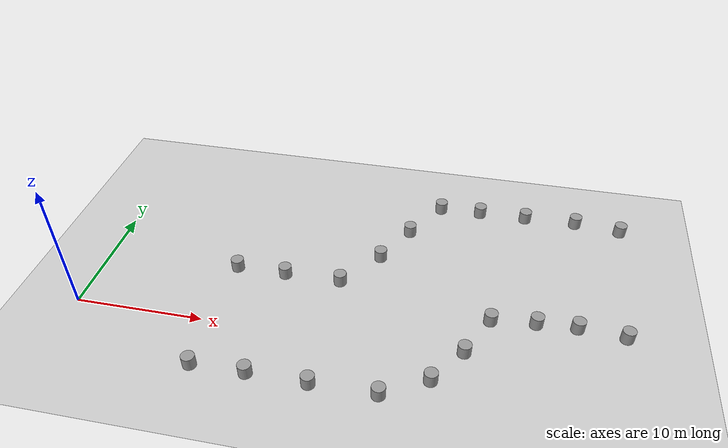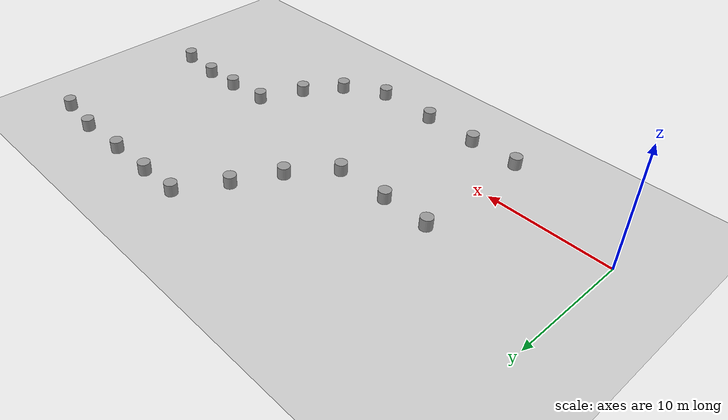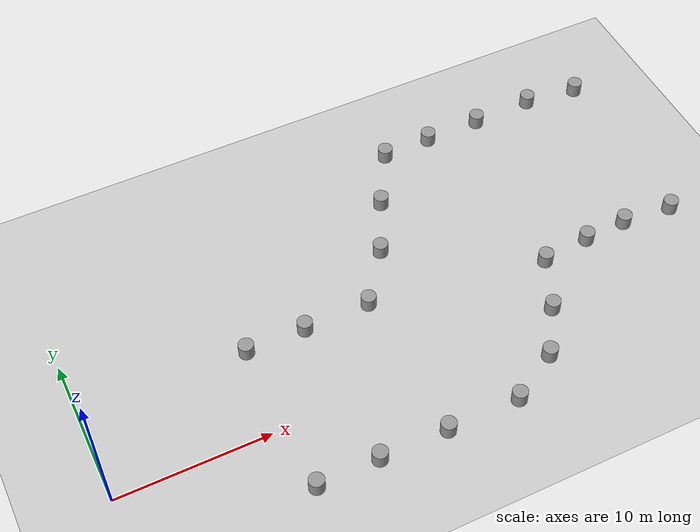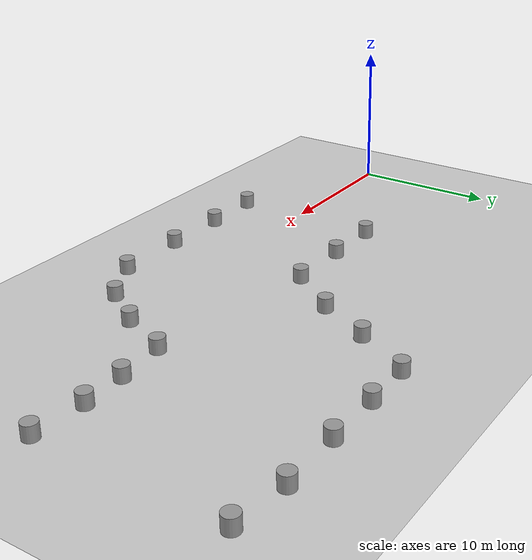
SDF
<sdf version="1.4">
 <world name="default">
  <light name="sun" type="directional">
   <pose>0 0 10 0 -0 0</pose>
   <diffuse>0.8 0.8 0.8 1</diffuse>
   <specular>0.2 0.2 0.2 1</specular>
   <attenuation>
    <range>1000</range>
    <constant>0.9</constant>
    <linear>0.01</linear>
    <quadratic>0.001</quadratic>
   </attenuation>
   <direction>-0.5 0.1 -0.9</direction>
  </light>
  <scene>
   <sky><time>10</time><clouds><speed>5</speed><direction>1.14</direction><humidity>0.3</humidity></clouds></sky>
   <ambient>0.4 0.4 0.4 1</ambient>
   <background>0.7 0.7 0.7 1</background>
   <shadows>1</shadows>
  </scene>
  <model name="ground_plane">
   <static>1</static>
   <link name="link">
    <collision name="collision">
     <geometry><plane><normal>0 0 1</normal><size>500 500</size></plane></geometry>
     <surface><friction><ode><mu>100</mu><mu2>100</mu2></ode></friction></surface>
    </collision>
    <visual name="visual">
     <cast_shadows>0</cast_shadows>
     <geometry><plane><normal>0 0 1</normal><size>500 500</size></plane></geometry>
     <material>
      <script><uri>file://media/materials/scripts/gazebo.material</uri><name>Gazebo/Grey</name></script>
     </material>
    </visual>
    <velocity_decay><linear>0</linear><angular>0</angular></velocity_decay>
   </link>
  </model>
  <physics type="ode">
   <max_step_size>0.001</max_step_size>
   <real_time_factor>1</real_time_factor>
   <real_time_update_rate>1000</real_time_update_rate>
   <gravity>0 0 -9.8</gravity>
  </physics>
  <spherical_coordinates>
   <surface_model>EARTH_WGS84</surface_model>
   <latitude_deg>0</latitude_deg>
   <longitude_deg>0</longitude_deg>
   <elevation>0</elevation>
   <heading_deg>0</heading_deg>
  </spherical_coordinates>
  <model name="unit_cylinder_1">
   <pose>10.8493 -4.37598 0.499992 -1e-06 1e-06 0</pose>
   <link name="link">
    <inertial>
     <mass>1</mass>
     <inertia><ixx>1</ixx><ixy>0</ixy><ixz>0</ixz><iyy>1</iyy><iyz>0</iyz><izz>1</izz></inertia>
    </inertial>
    <collision name="collision">
     <geometry><cylinder><radius>0.5</radius><length>1</length></cylinder></geometry>
    </collision>
    <visual name="visual">
     <geometry><cylinder><radius>0.5</radius><length>1</length></cylinder></geometry>
     <material>
      <script><uri>file://media/materials/scripts/gazebo.material</uri><name>Gazebo/Grey</name></script>
     </material>
    </visual>
    <velocity_decay><linear>0</linear><angular>0</angular></velocity_decay>
   </link>
   <static>0</static>
  </model>
  <model name="unit_cylinder_2">
   <pose>14.9034 -4.33385 0.499999 0 -0 0</pose>
   <link name="link">
    <inertial>
     <mass>1</mass>
     <inertia><ixx>1</ixx><ixy>0</ixy><ixz>0</ixz><iyy>1</iyy><iyz>0</iyz><izz>1</izz></inertia>
    </inertial>
    <collision name="collision">
     <geometry><cylinder><radius>0.5</radius><length>1</length></cylinder></geometry>
    </collision>
    <visual name="visual">
     <geometry><cylinder><radius>0.5</radius><length>1</length></cylinder></geometry>
     <material>
      <script><uri>file://media/materials/scripts/gazebo.material</uri><name>Gazebo/Grey</name></script>
     </material>
    </visual>
    <velocity_decay><linear>0</linear><angular>0</angular></velocity_decay>
   </link>
   <static>0</static>
  </model>
  <model name="unit_cylinder_3">
   <pose>19.3727 -4.37239 0.499991 0 -0 0</pose>
   <link name="link">
    <inertial>
     <mass>1</mass>
     <inertia><ixx>1</ixx><ixy>0</ixy><ixz>0</ixz><iyy>1</iyy><iyz>0</iyz><izz>1</izz></inertia>
    </inertial>
    <collision name="collision">
     <geometry><cylinder><radius>0.5</radius><length>1</length></cylinder></geometry>
    </collision>
    <visual name="visual">
     <geometry><cylinder><radius>0.5</radius><length>1</length></cylinder></geometry>
     <material>
      <script><uri>file://media/materials/scripts/gazebo.material</uri><name>Gazebo/Grey</name></script>
     </material>
    </visual>
    <velocity_decay><linear>0</linear><angular>0</angular></velocity_decay>
   </link>
   <static>0</static>
  </model>
  <model name="unit_cylinder_4">
   <pose>24.2225 -4.33482 0.499998 1e-06 -1e-06 0</pose>
   <link name="link">
    <inertial>
     <mass>1</mass>
     <inertia><ixx>1</ixx><ixy>0</ixy><ixz>0</ixz><iyy>1</iyy><iyz>0</iyz><izz>1</izz></inertia>
    </inertial>
    <collision name="collision">
     <geometry><cylinder><radius>0.5</radius><length>1</length></cylinder></geometry>
    </collision>
    <visual name="visual">
     <geometry><cylinder><radius>0.5</radius><length>1</length></cylinder></geometry>
     <material>
      <script><uri>file://media/materials/scripts/gazebo.material</uri><name>Gazebo/Grey</name></script>
     </material>
    </visual>
    <velocity_decay><linear>0</linear><angular>0</angular></velocity_decay>
   </link>
   <static>0</static>
  </model>
  <model name="unit_cylinder_5">
   <pose>30.99 4.06806 0.499992 -1e-06 1e-06 0</pose>
   <link name="link">
    <inertial>
     <mass>1</mass>
     <inertia><ixx>1</ixx><ixy>0</ixy><ixz>0</ixz><iyy>1</iyy><iyz>0</iyz><izz>1</izz></inertia>
    </inertial>
    <collision name="collision">
     <geometry><cylinder><radius>0.5</radius><length>1</length></cylinder></geometry>
    </collision>
    <visual name="visual">
     <geometry><cylinder><radius>0.5</radius><length>1</length></cylinder></geometry>
     <material>
      <script><uri>file://media/materials/scripts/gazebo.material</uri><name>Gazebo/Grey</name></script>
     </material>
    </visual>
    <velocity_decay><linear>0</linear><angular>0</angular></velocity_decay>
   </link>
   <static>0</static>
  </model>
  <model name="unit_cylinder_6">
   <pose>27.461 -2.4138 0.499992 -1e-06 1e-06 0</pose>
   <link name="link">
    <inertial>
     <mass>1</mass>
     <inertia><ixx>1</ixx><ixy>0</ixy><ixz>0</ixz><iyy>1</iyy><iyz>0</iyz><izz>1</izz></inertia>
    </inertial>
    <collision name="collision">
     <geometry><cylinder><radius>0.5</radius><length>1</length></cylinder></geometry>
    </collision>
    <visual name="visual">
     <geometry><cylinder><radius>0.5</radius><length>1</length></cylinder></geometry>
     <material>
      <script><uri>file://media/materials/scripts/gazebo.material</uri><name>Gazebo/Grey</name></script>
     </material>
    </visual>
    <velocity_decay><linear>0</linear><angular>0</angular></velocity_decay>
   </link>
   <static>0</static>
  </model>
  <model name="unit_cylinder_7">
   <pose>29.4275 0.569501 0.499998 0 -0 0</pose>
   <link name="link">
    <inertial>
     <mass>1</mass>
     <inertia><ixx>1</ixx><ixy>0</ixy><ixz>0</ixz><iyy>1</iyy><iyz>0</iyz><izz>1</izz></inertia>
    </inertial>
    <collision name="collision">
     <geometry><cylinder><radius>0.5</radius><length>1</length></cylinder></geometry>
    </collision>
    <visual name="visual">
     <geometry><cylinder><radius>0.5</radius><length>1</length></cylinder></geometry>
     <material>
      <script><uri>file://media/materials/scripts/gazebo.material</uri><name>Gazebo/Grey</name></script>
     </material>
    </visual>
    <velocity_decay><linear>0</linear><angular>0</angular></velocity_decay>
   </link>
   <static>0</static>
  </model>
  <model name="unit_cylinder_8">
   <pose>34.3193 4.41913 0.499996 -1e-06 1e-06 0</pose>
   <link name="link">
    <inertial>
     <mass>1</mass>
     <inertia><ixx>1</ixx><ixy>0</ixy><ixz>0</ixz><iyy>1</iyy><iyz>0</iyz><izz>1</izz></inertia>
    </inertial>
    <collision name="collision">
     <geometry><cylinder><radius>0.5</radius><length>1</length></cylinder></geometry>
    </collision>
    <visual name="visual">
     <geometry><cylinder><radius>0.5</radius><length>1</length></cylinder></geometry>
     <material>
      <script><uri>file://media/materials/scripts/gazebo.material</uri><name>Gazebo/Grey</name></script>
     </material>
    </visual>
    <velocity_decay><linear>0</linear><angular>0</angular></velocity_decay>
   </link>
   <static>0</static>
  </model>
  <model name="unit_cylinder_9">
   <pose>37.2907 4.56422 0.499994 1e-06 1e-06 0</pose>
   <link name="link">
    <inertial>
     <mass>1</mass>
     <inertia><ixx>1</ixx><ixy>0</ixy><ixz>0</ixz><iyy>1</iyy><iyz>0</iyz><izz>1</izz></inertia>
    </inertial>
    <collision name="collision">
     <geometry><cylinder><radius>0.5</radius><length>1</length></cylinder></geometry>
    </collision>
    <visual name="visual">
     <geometry><cylinder><radius>0.5</radius><length>1</length></cylinder></geometry>
     <material>
      <script><uri>file://media/materials/scripts/gazebo.material</uri><name>Gazebo/Grey</name></script>
     </material>
    </visual>
    <velocity_decay><linear>0</linear><angular>0</angular></velocity_decay>
   </link>
   <static>0</static>
  </model>
  <model name="unit_cylinder_10">
   <pose>40.7675 4.28969 0.499998 1e-06 -1e-06 0</pose>
   <link name="link">
    <inertial>
     <mass>1</mass>
     <inertia><ixx>1</ixx><ixy>0</ixy><ixz>0</ixz><iyy>1</iyy><iyz>0</iyz><izz>1</izz></inertia>
    </inertial>
    <collision name="collision">
     <geometry><cylinder><radius>0.5</radius><length>1</length></cylinder></geometry>
    </collision>
    <visual name="visual">
     <geometry><cylinder><radius>0.5</radius><length>1</length></cylinder></geometry>
     <material>
      <script><uri>file://media/materials/scripts/gazebo.material</uri><name>Gazebo/Grey</name></script>
     </material>
    </visual>
    <velocity_decay><linear>0</linear><angular>0</angular></velocity_decay>
   </link>
   <static>0</static>
  </model>
  <model name="unit_cylinder_11">
   <pose>10.7946 5.96568 0.504953 0.007788 -0.006204 1.0658</pose>
   <link name="link">
    <inertial>
     <mass>1</mass>
     <inertia><ixx>1</ixx><ixy>0</ixy><ixz>0</ixz><iyy>1</iyy><iyz>0</iyz><izz>1</izz></inertia>
    </inertial>
    <collision name="collision">
     <geometry><cylinder><radius>0.5</radius><length>1</length></cylinder></geometry>
    </collision>
    <visual name="visual">
     <geometry><cylinder><radius>0.5</radius><length>1</length></cylinder></geometry>
     <material>
      <script><uri>file://media/materials/scripts/gazebo.material</uri><name>Gazebo/Grey</name></script>
     </material>
    </visual>
    <velocity_decay><linear>0</linear><angular>0</angular></velocity_decay>
   </link>
   <static>0</static>
  </model>
  <model name="unit_cylinder_12">
   <pose>14.7322 5.94552 0.499992 0 -0 0</pose>
   <link name="link">
    <inertial>
     <mass>1</mass>
     <inertia><ixx>1</ixx><ixy>0</ixy><ixz>0</ixz><iyy>1</iyy><iyz>0</iyz><izz>1</izz></inertia>
    </inertial>
    <collision name="collision">
     <geometry><cylinder><radius>0.5</radius><length>1</length></cylinder></geometry>
    </collision>
    <visual name="visual">
     <geometry><cylinder><radius>0.5</radius><length>1</length></cylinder></geometry>
     <material>
      <script><uri>file://media/materials/scripts/gazebo.material</uri><name>Gazebo/Grey</name></script>
     </material>
    </visual>
    <velocity_decay><linear>0</linear><angular>0</angular></velocity_decay>
   </link>
   <static>0</static>
  </model>
  <model name="unit_cylinder_13">
   <pose>19.1583 5.99531 0.499998 0 -1e-06 0</pose>
   <link name="link">
    <inertial>
     <mass>1</mass>
     <inertia><ixx>1</ixx><ixy>0</ixy><ixz>0</ixz><iyy>1</iyy><iyz>0</iyz><izz>1</izz></inertia>
    </inertial>
    <collision name="collision">
     <geometry><cylinder><radius>0.5</radius><length>1</length></cylinder></geometry>
    </collision>
    <visual name="visual">
     <geometry><cylinder><radius>0.5</radius><length>1</length></cylinder></geometry>
     <material>
      <script><uri>file://media/materials/scripts/gazebo.material</uri><name>Gazebo/Grey</name></script>
     </material>
    </visual>
    <velocity_decay><linear>0</linear><angular>0</angular></velocity_decay>
   </link>
   <static>0</static>
  </model>
  <model name="unit_cylinder_14">
   <pose>21.7031 9.46693 0.499992 0 -0 0</pose>
   <link name="link">
    <inertial>
     <mass>1</mass>
     <inertia><ixx>1</ixx><ixy>0</ixy><ixz>0</ixz><iyy>1</iyy><iyz>0</iyz><izz>1</izz></inertia>
    </inertial>
    <collision name="collision">
     <geometry><cylinder><radius>0.5</radius><length>1</length></cylinder></geometry>
    </collision>
    <visual name="visual">
     <geometry><cylinder><radius>0.5</radius><length>1</length></cylinder></geometry>
     <material>
      <script><uri>file://media/materials/scripts/gazebo.material</uri><name>Gazebo/Grey</name></script>
     </material>
    </visual>
    <velocity_decay><linear>0</linear><angular>0</angular></velocity_decay>
   </link>
   <static>0</static>
  </model>
  <model name="unit_cylinder_15">
   <pose>23.5303 13.1175 0.499992 0 -0 0</pose>
   <link name="link">
    <inertial>
     <mass>1</mass>
     <inertia><ixx>1</ixx><ixy>0</ixy><ixz>0</ixz><iyy>1</iyy><iyz>0</iyz><izz>1</izz></inertia>
    </inertial>
    <collision name="collision">
     <geometry><cylinder><radius>0.5</radius><length>1</length></cylinder></geometry>
    </collision>
    <visual name="visual">
     <geometry><cylinder><radius>0.5</radius><length>1</length></cylinder></geometry>
     <material>
      <script><uri>file://media/materials/scripts/gazebo.material</uri><name>Gazebo/Grey</name></script>
     </material>
    </visual>
    <velocity_decay><linear>0</linear><angular>0</angular></velocity_decay>
   </link>
   <static>0</static>
  </model>
  <model name="unit_cylinder_16">
   <pose>25.6983 16.8599 0.499999 0 -1e-06 0</pose>
   <link name="link">
    <inertial>
     <mass>1</mass>
     <inertia><ixx>1</ixx><ixy>0</ixy><ixz>0</ixz><iyy>1</iyy><iyz>0</iyz><izz>1</izz></inertia>
    </inertial>
    <collision name="collision">
     <geometry><cylinder><radius>0.5</radius><length>1</length></cylinder></geometry>
    </collision>
    <visual name="visual">
     <geometry><cylinder><radius>0.5</radius><length>1</length></cylinder></geometry>
     <material>
      <script><uri>file://media/materials/scripts/gazebo.material</uri><name>Gazebo/Grey</name></script>
     </material>
    </visual>
    <velocity_decay><linear>0</linear><angular>0</angular></velocity_decay>
   </link>
   <static>0</static>
  </model>
  <model name="unit_cylinder_17">
   <pose>29.0752 16.9455 0.499996 0 -0 0</pose>
   <link name="link">
    <inertial>
     <mass>1</mass>
     <inertia><ixx>1</ixx><ixy>0</ixy><ixz>0</ixz><iyy>1</iyy><iyz>0</iyz><izz>1</izz></inertia>
    </inertial>
    <collision name="collision">
     <geometry><cylinder><radius>0.5</radius><length>1</length></cylinder></geometry>
    </collision>
    <visual name="visual">
     <geometry><cylinder><radius>0.5</radius><length>1</length></cylinder></geometry>
     <material>
      <script><uri>file://media/materials/scripts/gazebo.material</uri><name>Gazebo/Grey</name></script>
     </material>
    </visual>
    <velocity_decay><linear>0</linear><angular>0</angular></velocity_decay>
   </link>
   <static>0</static>
  </model>
  <model name="unit_cylinder_18">
   <pose>32.9335 16.9771 0.499992 0 -0 0</pose>
   <link name="link">
    <inertial>
     <mass>1</mass>
     <inertia><ixx>1</ixx><ixy>0</ixy><ixz>0</ixz><iyy>1</iyy><iyz>0</iyz><izz>1</izz></inertia>
    </inertial>
    <collision name="collision">
     <geometry><cylinder><radius>0.5</radius><length>1</length></cylinder></geometry>
    </collision>
    <visual name="visual">
     <geometry><cylinder><radius>0.5</radius><length>1</length></cylinder></geometry>
     <material>
      <script><uri>file://media/materials/scripts/gazebo.material</uri><name>Gazebo/Grey</name></script>
     </material>
    </visual>
    <velocity_decay><linear>0</linear><angular>0</angular></velocity_decay>
   </link>
   <static>0</static>
  </model>
  <model name="unit_cylinder_19">
   <pose>37.1308 17.0973 0.499991 -1e-06 -0 0</pose>
   <link name="link">
    <inertial>
     <mass>1</mass>
     <inertia><ixx>1</ixx><ixy>0</ixy><ixz>0</ixz><iyy>1</iyy><iyz>0</iyz><izz>1</izz></inertia>
    </inertial>
    <collision name="collision">
     <geometry><cylinder><radius>0.5</radius><length>1</length></cylinder></geometry>
    </collision>
    <visual name="visual">
     <geometry><cylinder><radius>0.5</radius><length>1</length></cylinder></geometry>
     <material>
      <script><uri>file://media/materials/scripts/gazebo.material</uri><name>Gazebo/Grey</name></script>
     </material>
    </visual>
    <velocity_decay><linear>0</linear><angular>0</angular></velocity_decay>
   </link>
   <static>0</static>
  </model>
  <model name="unit_cylinder_20">
   <pose>40.8208 16.6763 0.499992 0 -0 0</pose>
   <link name="link">
    <inertial>
     <mass>1</mass>
     <inertia><ixx>1</ixx><ixy>0</ixy><ixz>0</ixz><iyy>1</iyy><iyz>0</iyz><izz>1</izz></inertia>
    </inertial>
    <collision name="collision">
     <geometry><cylinder><radius>0.5</radius><length>1</length></cylinder></geometry>
    </collision>
    <visual name="visual">
     <geometry><cylinder><radius>0.5</radius><length>1</length></cylinder></geometry>
     <material>
      <script><uri>file://media/materials/scripts/gazebo.material</uri><name>Gazebo/Grey</name></script>
     </material>
    </visual>
    <velocity_decay><linear>0</linear><angular>0</angular></velocity_decay>
   </link>
   <static>0</static>
  </model>
 </world>
</sdf>
